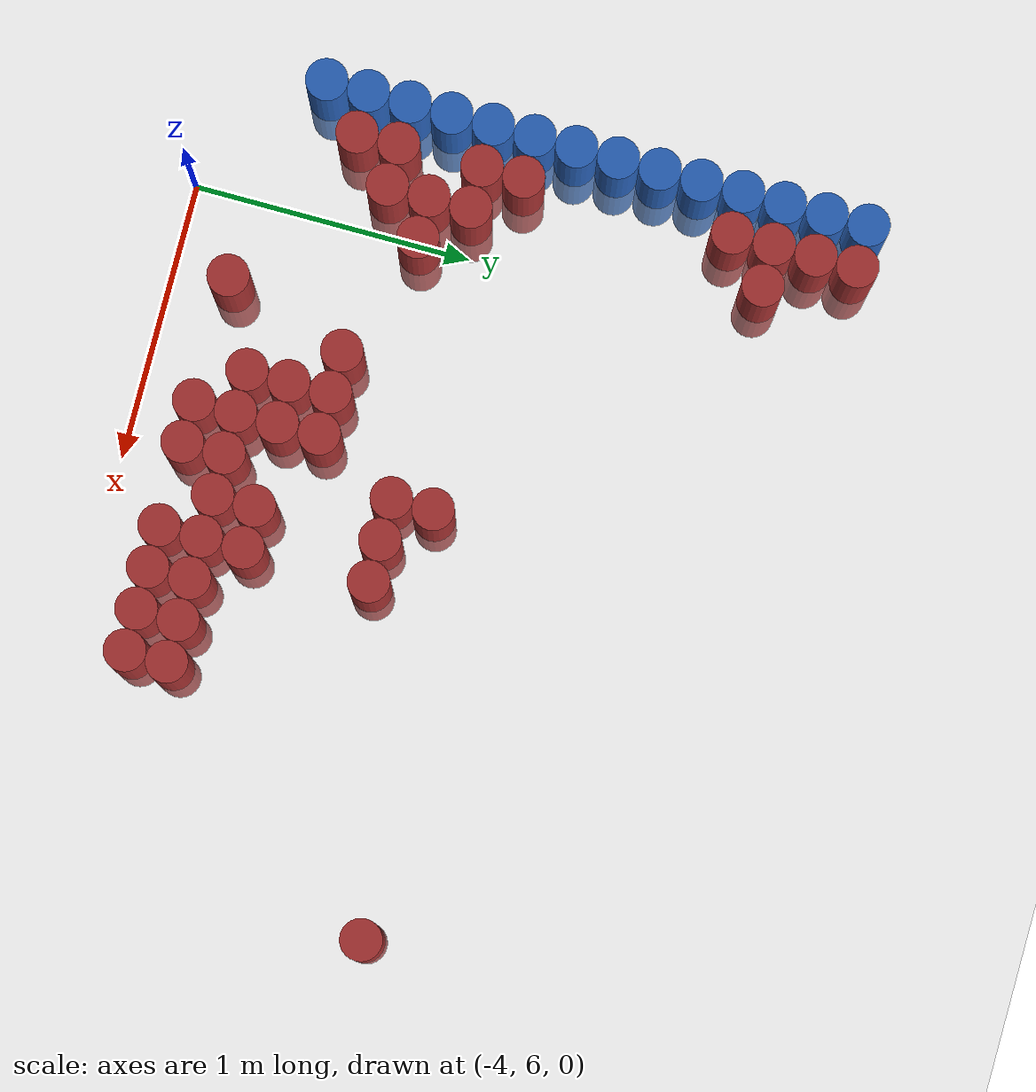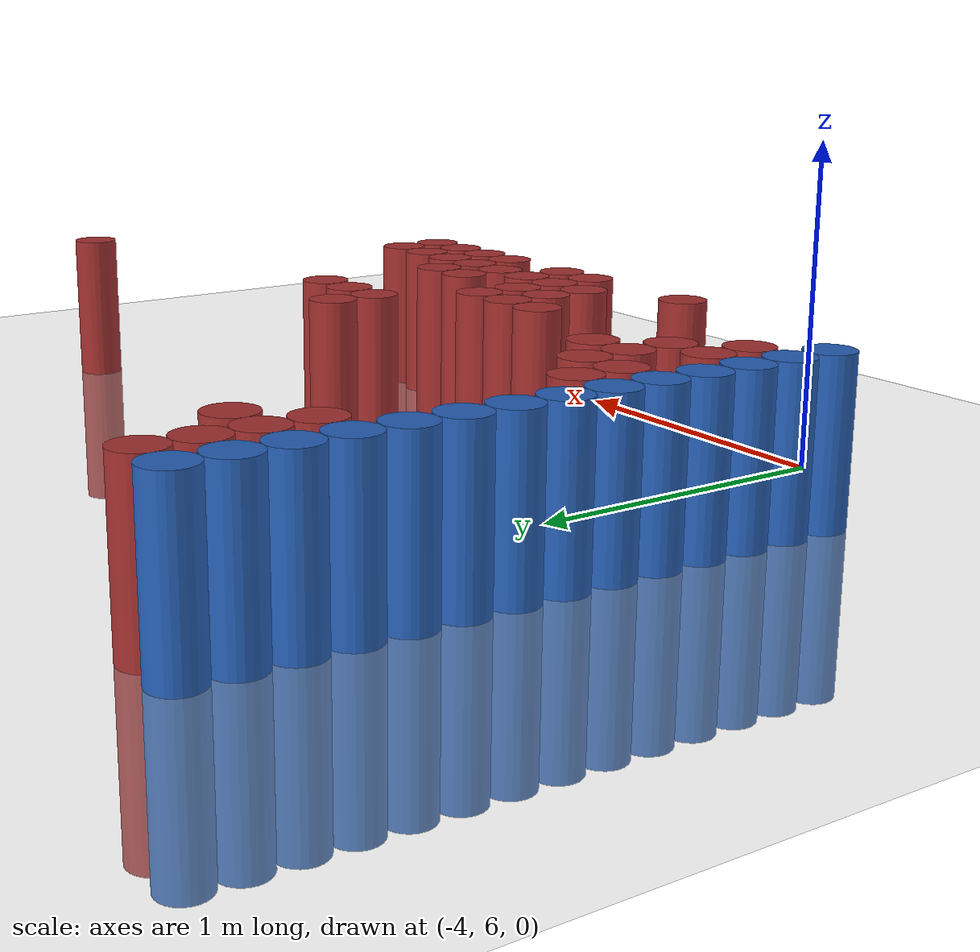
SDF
<sdf version="1.6">
 <world name="default">
  <model name="ground_plane">
   <static>1</static>
   <link name="link">
    <collision name="collision">
     <geometry><plane><normal>0 0 1</normal><size>100 100</size></plane></geometry>
     <surface><friction><ode><mu>100</mu><mu2>50</mu2></ode></friction></surface>
    </collision>
    <visual name="visual">
     <cast_shadows>0</cast_shadows>
     <geometry><plane><normal>0 0 1</normal><size>100 100</size></plane></geometry>
     <material>
      <script><uri>file://media/materials/scripts/gazebo.material</uri><name>Gazebo/Grey</name></script>
     </material>
    </visual>
   </link>
  </model>
  <model name="unit_cylinder_104">
   <static>1</static>
   <pose>-4.425000 6.375000 0.000000 0.000000 0.000000 0.000000</pose>
   <link name="link">
    <inertial>
     <mass>1</mass>
     <inertia><ixx>0.145833</ixx><ixy>0</ixy><ixz>0</ixz><iyy>0.145833</iyy><iyz>0</iyz><izz>0.125</izz></inertia>
    </inertial>
    <collision name="collision">
     <geometry><cylinder><radius>0.075000</radius><length>1</length></cylinder></geometry>
    </collision>
    <visual name="visual">
     <geometry><cylinder><radius>0.075000</radius><length>1</length></cylinder></geometry>
     <material>
      <ambient>0.152000 0.379000 0.720000 1</ambient>
      <diffuse>0.152000 0.379000 0.720000 1</diffuse>
     </material>
     <material>
      <script><name>Gazebo/Grey</name><uri>file://media/materials/scripts/gazebo.material</uri></script>
     </material>
    </visual>
   </link>
  </model>
  <model name="unit_cylinder_105">
   <static>1</static>
   <pose>-4.425000 6.525000 0.000000 0.000000 0.000000 0.000000</pose>
   <link name="link">
    <inertial>
     <mass>1</mass>
     <inertia><ixx>0.145833</ixx><ixy>0</ixy><ixz>0</ixz><iyy>0.145833</iyy><iyz>0</iyz><izz>0.125</izz></inertia>
    </inertial>
    <collision name="collision">
     <geometry><cylinder><radius>0.075000</radius><length>1</length></cylinder></geometry>
    </collision>
    <visual name="visual">
     <geometry><cylinder><radius>0.075000</radius><length>1</length></cylinder></geometry>
     <material>
      <ambient>0.152000 0.379000 0.720000 1</ambient>
      <diffuse>0.152000 0.379000 0.720000 1</diffuse>
     </material>
     <material>
      <script><name>Gazebo/Grey</name><uri>file://media/materials/scripts/gazebo.material</uri></script>
     </material>
    </visual>
   </link>
  </model>
  <model name="unit_cylinder_106">
   <static>1</static>
   <pose>-4.425000 6.675000 0.000000 0.000000 0.000000 0.000000</pose>
   <link name="link">
    <inertial>
     <mass>1</mass>
     <inertia><ixx>0.145833</ixx><ixy>0</ixy><ixz>0</ixz><iyy>0.145833</iyy><iyz>0</iyz><izz>0.125</izz></inertia>
    </inertial>
    <collision name="collision">
     <geometry><cylinder><radius>0.075000</radius><length>1</length></cylinder></geometry>
    </collision>
    <visual name="visual">
     <geometry><cylinder><radius>0.075000</radius><length>1</length></cylinder></geometry>
     <material>
      <ambient>0.152000 0.379000 0.720000 1</ambient>
      <diffuse>0.152000 0.379000 0.720000 1</diffuse>
     </material>
     <material>
      <script><name>Gazebo/Grey</name><uri>file://media/materials/scripts/gazebo.material</uri></script>
     </material>
    </visual>
   </link>
  </model>
  <model name="unit_cylinder_107">
   <static>1</static>
   <pose>-4.425000 6.825000 0.000000 0.000000 0.000000 0.000000</pose>
   <link name="link">
    <inertial>
     <mass>1</mass>
     <inertia><ixx>0.145833</ixx><ixy>0</ixy><ixz>0</ixz><iyy>0.145833</iyy><iyz>0</iyz><izz>0.125</izz></inertia>
    </inertial>
    <collision name="collision">
     <geometry><cylinder><radius>0.075000</radius><length>1</length></cylinder></geometry>
    </collision>
    <visual name="visual">
     <geometry><cylinder><radius>0.075000</radius><length>1</length></cylinder></geometry>
     <material>
      <ambient>0.152000 0.379000 0.720000 1</ambient>
      <diffuse>0.152000 0.379000 0.720000 1</diffuse>
     </material>
     <material>
      <script><name>Gazebo/Grey</name><uri>file://media/materials/scripts/gazebo.material</uri></script>
     </material>
    </visual>
   </link>
  </model>
  <model name="unit_cylinder_108">
   <static>1</static>
   <pose>-4.425000 6.975000 0.000000 0.000000 0.000000 0.000000</pose>
   <link name="link">
    <inertial>
     <mass>1</mass>
     <inertia><ixx>0.145833</ixx><ixy>0</ixy><ixz>0</ixz><iyy>0.145833</iyy><iyz>0</iyz><izz>0.125</izz></inertia>
    </inertial>
    <collision name="collision">
     <geometry><cylinder><radius>0.075000</radius><length>1</length></cylinder></geometry>
    </collision>
    <visual name="visual">
     <geometry><cylinder><radius>0.075000</radius><length>1</length></cylinder></geometry>
     <material>
      <ambient>0.152000 0.379000 0.720000 1</ambient>
      <diffuse>0.152000 0.379000 0.720000 1</diffuse>
     </material>
     <material>
      <script><name>Gazebo/Grey</name><uri>file://media/materials/scripts/gazebo.material</uri></script>
     </material>
    </visual>
   </link>
  </model>
  <model name="unit_cylinder_109">
   <static>1</static>
   <pose>-4.425000 7.125000 0.000000 0.000000 0.000000 0.000000</pose>
   <link name="link">
    <inertial>
     <mass>1</mass>
     <inertia><ixx>0.145833</ixx><ixy>0</ixy><ixz>0</ixz><iyy>0.145833</iyy><iyz>0</iyz><izz>0.125</izz></inertia>
    </inertial>
    <collision name="collision">
     <geometry><cylinder><radius>0.075000</radius><length>1</length></cylinder></geometry>
    </collision>
    <visual name="visual">
     <geometry><cylinder><radius>0.075000</radius><length>1</length></cylinder></geometry>
     <material>
      <ambient>0.152000 0.379000 0.720000 1</ambient>
      <diffuse>0.152000 0.379000 0.720000 1</diffuse>
     </material>
     <material>
      <script><name>Gazebo/Grey</name><uri>file://media/materials/scripts/gazebo.material</uri></script>
     </material>
    </visual>
   </link>
  </model>
  <model name="unit_cylinder_110">
   <static>1</static>
   <pose>-4.425000 7.275000 0.000000 0.000000 0.000000 0.000000</pose>
   <link name="link">
    <inertial>
     <mass>1</mass>
     <inertia><ixx>0.145833</ixx><ixy>0</ixy><ixz>0</ixz><iyy>0.145833</iyy><iyz>0</iyz><izz>0.125</izz></inertia>
    </inertial>
    <collision name="collision">
     <geometry><cylinder><radius>0.075000</radius><length>1</length></cylinder></geometry>
    </collision>
    <visual name="visual">
     <geometry><cylinder><radius>0.075000</radius><length>1</length></cylinder></geometry>
     <material>
      <ambient>0.152000 0.379000 0.720000 1</ambient>
      <diffuse>0.152000 0.379000 0.720000 1</diffuse>
     </material>
     <material>
      <script><name>Gazebo/Grey</name><uri>file://media/materials/scripts/gazebo.material</uri></script>
     </material>
    </visual>
   </link>
  </model>
  <model name="unit_cylinder_111">
   <static>1</static>
   <pose>-4.425000 7.425000 0.000000 0.000000 0.000000 0.000000</pose>
   <link name="link">
    <inertial>
     <mass>1</mass>
     <inertia><ixx>0.145833</ixx><ixy>0</ixy><ixz>0</ixz><iyy>0.145833</iyy><iyz>0</iyz><izz>0.125</izz></inertia>
    </inertial>
    <collision name="collision">
     <geometry><cylinder><radius>0.075000</radius><length>1</length></cylinder></geometry>
    </collision>
    <visual name="visual">
     <geometry><cylinder><radius>0.075000</radius><length>1</length></cylinder></geometry>
     <material>
      <ambient>0.152000 0.379000 0.720000 1</ambient>
      <diffuse>0.152000 0.379000 0.720000 1</diffuse>
     </material>
     <material>
      <script><name>Gazebo/Grey</name><uri>file://media/materials/scripts/gazebo.material</uri></script>
     </material>
    </visual>
   </link>
  </model>
  <model name="unit_cylinder_112">
   <static>1</static>
   <pose>-4.425000 7.575000 0.000000 0.000000 0.000000 0.000000</pose>
   <link name="link">
    <inertial>
     <mass>1</mass>
     <inertia><ixx>0.145833</ixx><ixy>0</ixy><ixz>0</ixz><iyy>0.145833</iyy><iyz>0</iyz><izz>0.125</izz></inertia>
    </inertial>
    <collision name="collision">
     <geometry><cylinder><radius>0.075000</radius><length>1</length></cylinder></geometry>
    </collision>
    <visual name="visual">
     <geometry><cylinder><radius>0.075000</radius><length>1</length></cylinder></geometry>
     <material>
      <ambient>0.152000 0.379000 0.720000 1</ambient>
      <diffuse>0.152000 0.379000 0.720000 1</diffuse>
     </material>
     <material>
      <script><name>Gazebo/Grey</name><uri>file://media/materials/scripts/gazebo.material</uri></script>
     </material>
    </visual>
   </link>
  </model>
  <model name="unit_cylinder_113">
   <static>1</static>
   <pose>-4.425000 7.725000 0.000000 0.000000 0.000000 0.000000</pose>
   <link name="link">
    <inertial>
     <mass>1</mass>
     <inertia><ixx>0.145833</ixx><ixy>0</ixy><ixz>0</ixz><iyy>0.145833</iyy><iyz>0</iyz><izz>0.125</izz></inertia>
    </inertial>
    <collision name="collision">
     <geometry><cylinder><radius>0.075000</radius><length>1</length></cylinder></geometry>
    </collision>
    <visual name="visual">
     <geometry><cylinder><radius>0.075000</radius><length>1</length></cylinder></geometry>
     <material>
      <ambient>0.152000 0.379000 0.720000 1</ambient>
      <diffuse>0.152000 0.379000 0.720000 1</diffuse>
     </material>
     <material>
      <script><name>Gazebo/Grey</name><uri>file://media/materials/scripts/gazebo.material</uri></script>
     </material>
    </visual>
   </link>
  </model>
  <model name="unit_cylinder_114">
   <static>1</static>
   <pose>-4.425000 7.875000 0.000000 0.000000 0.000000 0.000000</pose>
   <link name="link">
    <inertial>
     <mass>1</mass>
     <inertia><ixx>0.145833</ixx><ixy>0</ixy><ixz>0</ixz><iyy>0.145833</iyy><iyz>0</iyz><izz>0.125</izz></inertia>
    </inertial>
    <collision name="collision">
     <geometry><cylinder><radius>0.075000</radius><length>1</length></cylinder></geometry>
    </collision>
    <visual name="visual">
     <geometry><cylinder><radius>0.075000</radius><length>1</length></cylinder></geometry>
     <material>
      <ambient>0.152000 0.379000 0.720000 1</ambient>
      <diffuse>0.152000 0.379000 0.720000 1</diffuse>
     </material>
     <material>
      <script><name>Gazebo/Grey</name><uri>file://media/materials/scripts/gazebo.material</uri></script>
     </material>
    </visual>
   </link>
  </model>
  <model name="unit_cylinder_115">
   <static>1</static>
   <pose>-4.425000 8.025000 0.000000 0.000000 0.000000 0.000000</pose>
   <link name="link">
    <inertial>
     <mass>1</mass>
     <inertia><ixx>0.145833</ixx><ixy>0</ixy><ixz>0</ixz><iyy>0.145833</iyy><iyz>0</iyz><izz>0.125</izz></inertia>
    </inertial>
    <collision name="collision">
     <geometry><cylinder><radius>0.075000</radius><length>1</length></cylinder></geometry>
    </collision>
    <visual name="visual">
     <geometry><cylinder><radius>0.075000</radius><length>1</length></cylinder></geometry>
     <material>
      <ambient>0.152000 0.379000 0.720000 1</ambient>
      <diffuse>0.152000 0.379000 0.720000 1</diffuse>
     </material>
     <material>
      <script><name>Gazebo/Grey</name><uri>file://media/materials/scripts/gazebo.material</uri></script>
     </material>
    </visual>
   </link>
  </model>
  <model name="unit_cylinder_116">
   <static>1</static>
   <pose>-4.425000 8.175000 0.000000 0.000000 0.000000 0.000000</pose>
   <link name="link">
    <inertial>
     <mass>1</mass>
     <inertia><ixx>0.145833</ixx><ixy>0</ixy><ixz>0</ixz><iyy>0.145833</iyy><iyz>0</iyz><izz>0.125</izz></inertia>
    </inertial>
    <collision name="collision">
     <geometry><cylinder><radius>0.075000</radius><length>1</length></cylinder></geometry>
    </collision>
    <visual name="visual">
     <geometry><cylinder><radius>0.075000</radius><length>1</length></cylinder></geometry>
     <material>
      <ambient>0.152000 0.379000 0.720000 1</ambient>
      <diffuse>0.152000 0.379000 0.720000 1</diffuse>
     </material>
     <material>
      <script><name>Gazebo/Grey</name><uri>file://media/materials/scripts/gazebo.material</uri></script>
     </material>
    </visual>
   </link>
  </model>
  <model name="unit_cylinder_117">
   <static>1</static>
   <pose>-4.425000 8.325000 0.000000 0.000000 0.000000 0.000000</pose>
   <link name="link">
    <inertial>
     <mass>1</mass>
     <inertia><ixx>0.145833</ixx><ixy>0</ixy><ixz>0</ixz><iyy>0.145833</iyy><iyz>0</iyz><izz>0.125</izz></inertia>
    </inertial>
    <collision name="collision">
     <geometry><cylinder><radius>0.075000</radius><length>1</length></cylinder></geometry>
    </collision>
    <visual name="visual">
     <geometry><cylinder><radius>0.075000</radius><length>1</length></cylinder></geometry>
     <material>
      <ambient>0.152000 0.379000 0.720000 1</ambient>
      <diffuse>0.152000 0.379000 0.720000 1</diffuse>
     </material>
     <material>
      <script><name>Gazebo/Grey</name><uri>file://media/materials/scripts/gazebo.material</uri></script>
     </material>
    </visual>
   </link>
  </model>
  <model name="unit_cylinder_132">
   <static>1</static>
   <pose>-4.275000 6.525000 0.000000 0.000000 0.000000 0.000000</pose>
   <link name="link">
    <inertial>
     <mass>1</mass>
     <inertia><ixx>0.145833</ixx><ixy>0</ixy><ixz>0</ixz><iyy>0.145833</iyy><iyz>0</iyz><izz>0.125</izz></inertia>
    </inertial>
    <collision name="collision">
     <geometry><cylinder><radius>0.075000</radius><length>1</length></cylinder></geometry>
    </collision>
    <visual name="visual">
     <geometry><cylinder><radius>0.075000</radius><length>1</length></cylinder></geometry>
     <material>
      <ambient>0.648000 0.192000 0.192000 1</ambient>
      <diffuse>0.648000 0.192000 0.192000 1</diffuse>
     </material>
     <material>
      <script><name>Gazebo/Grey</name><uri>file://media/materials/scripts/gazebo.material</uri></script>
     </material>
    </visual>
   </link>
  </model>
  <model name="unit_cylinder_133">
   <static>1</static>
   <pose>-4.275000 6.675000 0.000000 0.000000 0.000000 0.000000</pose>
   <link name="link">
    <inertial>
     <mass>1</mass>
     <inertia><ixx>0.145833</ixx><ixy>0</ixy><ixz>0</ixz><iyy>0.145833</iyy><iyz>0</iyz><izz>0.125</izz></inertia>
    </inertial>
    <collision name="collision">
     <geometry><cylinder><radius>0.075000</radius><length>1</length></cylinder></geometry>
    </collision>
    <visual name="visual">
     <geometry><cylinder><radius>0.075000</radius><length>1</length></cylinder></geometry>
     <material>
      <ambient>0.648000 0.192000 0.192000 1</ambient>
      <diffuse>0.648000 0.192000 0.192000 1</diffuse>
     </material>
     <material>
      <script><name>Gazebo/Grey</name><uri>file://media/materials/scripts/gazebo.material</uri></script>
     </material>
    </visual>
   </link>
  </model>
  <model name="unit_cylinder_134">
   <static>1</static>
   <pose>-4.275000 6.975000 0.000000 0.000000 0.000000 0.000000</pose>
   <link name="link">
    <inertial>
     <mass>1</mass>
     <inertia><ixx>0.145833</ixx><ixy>0</ixy><ixz>0</ixz><iyy>0.145833</iyy><iyz>0</iyz><izz>0.125</izz></inertia>
    </inertial>
    <collision name="collision">
     <geometry><cylinder><radius>0.075000</radius><length>1</length></cylinder></geometry>
    </collision>
    <visual name="visual">
     <geometry><cylinder><radius>0.075000</radius><length>1</length></cylinder></geometry>
     <material>
      <ambient>0.648000 0.192000 0.192000 1</ambient>
      <diffuse>0.648000 0.192000 0.192000 1</diffuse>
     </material>
     <material>
      <script><name>Gazebo/Grey</name><uri>file://media/materials/scripts/gazebo.material</uri></script>
     </material>
    </visual>
   </link>
  </model>
  <model name="unit_cylinder_135">
   <static>1</static>
   <pose>-4.275000 7.125000 0.000000 0.000000 0.000000 0.000000</pose>
   <link name="link">
    <inertial>
     <mass>1</mass>
     <inertia><ixx>0.145833</ixx><ixy>0</ixy><ixz>0</ixz><iyy>0.145833</iyy><iyz>0</iyz><izz>0.125</izz></inertia>
    </inertial>
    <collision name="collision">
     <geometry><cylinder><radius>0.075000</radius><length>1</length></cylinder></geometry>
    </collision>
    <visual name="visual">
     <geometry><cylinder><radius>0.075000</radius><length>1</length></cylinder></geometry>
     <material>
      <ambient>0.648000 0.192000 0.192000 1</ambient>
      <diffuse>0.648000 0.192000 0.192000 1</diffuse>
     </material>
     <material>
      <script><name>Gazebo/Grey</name><uri>file://media/materials/scripts/gazebo.material</uri></script>
     </material>
    </visual>
   </link>
  </model>
  <model name="unit_cylinder_136">
   <static>1</static>
   <pose>-4.275000 7.875000 0.000000 0.000000 0.000000 0.000000</pose>
   <link name="link">
    <inertial>
     <mass>1</mass>
     <inertia><ixx>0.145833</ixx><ixy>0</ixy><ixz>0</ixz><iyy>0.145833</iyy><iyz>0</iyz><izz>0.125</izz></inertia>
    </inertial>
    <collision name="collision">
     <geometry><cylinder><radius>0.075000</radius><length>1</length></cylinder></geometry>
    </collision>
    <visual name="visual">
     <geometry><cylinder><radius>0.075000</radius><length>1</length></cylinder></geometry>
     <material>
      <ambient>0.648000 0.192000 0.192000 1</ambient>
      <diffuse>0.648000 0.192000 0.192000 1</diffuse>
     </material>
     <material>
      <script><name>Gazebo/Grey</name><uri>file://media/materials/scripts/gazebo.material</uri></script>
     </material>
    </visual>
   </link>
  </model>
  <model name="unit_cylinder_137">
   <static>1</static>
   <pose>-4.275000 8.025000 0.000000 0.000000 0.000000 0.000000</pose>
   <link name="link">
    <inertial>
     <mass>1</mass>
     <inertia><ixx>0.145833</ixx><ixy>0</ixy><ixz>0</ixz><iyy>0.145833</iyy><iyz>0</iyz><izz>0.125</izz></inertia>
    </inertial>
    <collision name="collision">
     <geometry><cylinder><radius>0.075000</radius><length>1</length></cylinder></geometry>
    </collision>
    <visual name="visual">
     <geometry><cylinder><radius>0.075000</radius><length>1</length></cylinder></geometry>
     <material>
      <ambient>0.648000 0.192000 0.192000 1</ambient>
      <diffuse>0.648000 0.192000 0.192000 1</diffuse>
     </material>
     <material>
      <script><name>Gazebo/Grey</name><uri>file://media/materials/scripts/gazebo.material</uri></script>
     </material>
    </visual>
   </link>
  </model>
  <model name="unit_cylinder_138">
   <static>1</static>
   <pose>-4.275000 8.175000 0.000000 0.000000 0.000000 0.000000</pose>
   <link name="link">
    <inertial>
     <mass>1</mass>
     <inertia><ixx>0.145833</ixx><ixy>0</ixy><ixz>0</ixz><iyy>0.145833</iyy><iyz>0</iyz><izz>0.125</izz></inertia>
    </inertial>
    <collision name="collision">
     <geometry><cylinder><radius>0.075000</radius><length>1</length></cylinder></geometry>
    </collision>
    <visual name="visual">
     <geometry><cylinder><radius>0.075000</radius><length>1</length></cylinder></geometry>
     <material>
      <ambient>0.648000 0.192000 0.192000 1</ambient>
      <diffuse>0.648000 0.192000 0.192000 1</diffuse>
     </material>
     <material>
      <script><name>Gazebo/Grey</name><uri>file://media/materials/scripts/gazebo.material</uri></script>
     </material>
    </visual>
   </link>
  </model>
  <model name="unit_cylinder_139">
   <static>1</static>
   <pose>-4.275000 8.325000 0.000000 0.000000 0.000000 0.000000</pose>
   <link name="link">
    <inertial>
     <mass>1</mass>
     <inertia><ixx>0.145833</ixx><ixy>0</ixy><ixz>0</ixz><iyy>0.145833</iyy><iyz>0</iyz><izz>0.125</izz></inertia>
    </inertial>
    <collision name="collision">
     <geometry><cylinder><radius>0.075000</radius><length>1</length></cylinder></geometry>
    </collision>
    <visual name="visual">
     <geometry><cylinder><radius>0.075000</radius><length>1</length></cylinder></geometry>
     <material>
      <ambient>0.648000 0.192000 0.192000 1</ambient>
      <diffuse>0.648000 0.192000 0.192000 1</diffuse>
     </material>
     <material>
      <script><name>Gazebo/Grey</name><uri>file://media/materials/scripts/gazebo.material</uri></script>
     </material>
    </visual>
   </link>
  </model>
  <model name="unit_cylinder_145">
   <static>1</static>
   <pose>-4.125000 6.675000 0.000000 0.000000 0.000000 0.000000</pose>
   <link name="link">
    <inertial>
     <mass>1</mass>
     <inertia><ixx>0.145833</ixx><ixy>0</ixy><ixz>0</ixz><iyy>0.145833</iyy><iyz>0</iyz><izz>0.125</izz></inertia>
    </inertial>
    <collision name="collision">
     <geometry><cylinder><radius>0.075000</radius><length>1</length></cylinder></geometry>
    </collision>
    <visual name="visual">
     <geometry><cylinder><radius>0.075000</radius><length>1</length></cylinder></geometry>
     <material>
      <ambient>0.648000 0.192000 0.192000 1</ambient>
      <diffuse>0.648000 0.192000 0.192000 1</diffuse>
     </material>
     <material>
      <script><name>Gazebo/Grey</name><uri>file://media/materials/scripts/gazebo.material</uri></script>
     </material>
    </visual>
   </link>
  </model>
  <model name="unit_cylinder_146">
   <static>1</static>
   <pose>-4.125000 6.825000 0.000000 0.000000 0.000000 0.000000</pose>
   <link name="link">
    <inertial>
     <mass>1</mass>
     <inertia><ixx>0.145833</ixx><ixy>0</ixy><ixz>0</ixz><iyy>0.145833</iyy><iyz>0</iyz><izz>0.125</izz></inertia>
    </inertial>
    <collision name="collision">
     <geometry><cylinder><radius>0.075000</radius><length>1</length></cylinder></geometry>
    </collision>
    <visual name="visual">
     <geometry><cylinder><radius>0.075000</radius><length>1</length></cylinder></geometry>
     <material>
      <ambient>0.648000 0.192000 0.192000 1</ambient>
      <diffuse>0.648000 0.192000 0.192000 1</diffuse>
     </material>
     <material>
      <script><name>Gazebo/Grey</name><uri>file://media/materials/scripts/gazebo.material</uri></script>
     </material>
    </visual>
   </link>
  </model>
  <model name="unit_cylinder_147">
   <static>1</static>
   <pose>-4.125000 6.975000 0.000000 0.000000 0.000000 0.000000</pose>
   <link name="link">
    <inertial>
     <mass>1</mass>
     <inertia><ixx>0.145833</ixx><ixy>0</ixy><ixz>0</ixz><iyy>0.145833</iyy><iyz>0</iyz><izz>0.125</izz></inertia>
    </inertial>
    <collision name="collision">
     <geometry><cylinder><radius>0.075000</radius><length>1</length></cylinder></geometry>
    </collision>
    <visual name="visual">
     <geometry><cylinder><radius>0.075000</radius><length>1</length></cylinder></geometry>
     <material>
      <ambient>0.648000 0.192000 0.192000 1</ambient>
      <diffuse>0.648000 0.192000 0.192000 1</diffuse>
     </material>
     <material>
      <script><name>Gazebo/Grey</name><uri>file://media/materials/scripts/gazebo.material</uri></script>
     </material>
    </visual>
   </link>
  </model>
  <model name="unit_cylinder_148">
   <static>1</static>
   <pose>-4.125000 8.025000 0.000000 0.000000 0.000000 0.000000</pose>
   <link name="link">
    <inertial>
     <mass>1</mass>
     <inertia><ixx>0.145833</ixx><ixy>0</ixy><ixz>0</ixz><iyy>0.145833</iyy><iyz>0</iyz><izz>0.125</izz></inertia>
    </inertial>
    <collision name="collision">
     <geometry><cylinder><radius>0.075000</radius><length>1</length></cylinder></geometry>
    </collision>
    <visual name="visual">
     <geometry><cylinder><radius>0.075000</radius><length>1</length></cylinder></geometry>
     <material>
      <ambient>0.648000 0.192000 0.192000 1</ambient>
      <diffuse>0.648000 0.192000 0.192000 1</diffuse>
     </material>
     <material>
      <script><name>Gazebo/Grey</name><uri>file://media/materials/scripts/gazebo.material</uri></script>
     </material>
    </visual>
   </link>
  </model>
  <model name="unit_cylinder_153">
   <static>1</static>
   <pose>-3.975000 6.825000 0.000000 0.000000 0.000000 0.000000</pose>
   <link name="link">
    <inertial>
     <mass>1</mass>
     <inertia><ixx>0.145833</ixx><ixy>0</ixy><ixz>0</ixz><iyy>0.145833</iyy><iyz>0</iyz><izz>0.125</izz></inertia>
    </inertial>
    <collision name="collision">
     <geometry><cylinder><radius>0.075000</radius><length>1</length></cylinder></geometry>
    </collision>
    <visual name="visual">
     <geometry><cylinder><radius>0.075000</radius><length>1</length></cylinder></geometry>
     <material>
      <ambient>0.648000 0.192000 0.192000 1</ambient>
      <diffuse>0.648000 0.192000 0.192000 1</diffuse>
     </material>
     <material>
      <script><name>Gazebo/Grey</name><uri>file://media/materials/scripts/gazebo.material</uri></script>
     </material>
    </visual>
   </link>
  </model>
  <model name="unit_cylinder_166">
   <static>1</static>
   <pose>-3.675000 6.225000 0.000000 0.000000 0.000000 0.000000</pose>
   <link name="link">
    <inertial>
     <mass>1</mass>
     <inertia><ixx>0.145833</ixx><ixy>0</ixy><ixz>0</ixz><iyy>0.145833</iyy><iyz>0</iyz><izz>0.125</izz></inertia>
    </inertial>
    <collision name="collision">
     <geometry><cylinder><radius>0.075000</radius><length>1</length></cylinder></geometry>
    </collision>
    <visual name="visual">
     <geometry><cylinder><radius>0.075000</radius><length>1</length></cylinder></geometry>
     <material>
      <ambient>0.648000 0.192000 0.192000 1</ambient>
      <diffuse>0.648000 0.192000 0.192000 1</diffuse>
     </material>
     <material>
      <script><name>Gazebo/Grey</name><uri>file://media/materials/scripts/gazebo.material</uri></script>
     </material>
    </visual>
   </link>
  </model>
  <model name="unit_cylinder_172">
   <static>1</static>
   <pose>-3.525000 6.675000 0.000000 0.000000 0.000000 0.000000</pose>
   <link name="link">
    <inertial>
     <mass>1</mass>
     <inertia><ixx>0.145833</ixx><ixy>0</ixy><ixz>0</ixz><iyy>0.145833</iyy><iyz>0</iyz><izz>0.125</izz></inertia>
    </inertial>
    <collision name="collision">
     <geometry><cylinder><radius>0.075000</radius><length>1</length></cylinder></geometry>
    </collision>
    <visual name="visual">
     <geometry><cylinder><radius>0.075000</radius><length>1</length></cylinder></geometry>
     <material>
      <ambient>0.648000 0.192000 0.192000 1</ambient>
      <diffuse>0.648000 0.192000 0.192000 1</diffuse>
     </material>
     <material>
      <script><name>Gazebo/Grey</name><uri>file://media/materials/scripts/gazebo.material</uri></script>
     </material>
    </visual>
   </link>
  </model>
  <model name="unit_cylinder_180">
   <static>1</static>
   <pose>-3.375000 6.375000 0.000000 0.000000 0.000000 0.000000</pose>
   <link name="link">
    <inertial>
     <mass>1</mass>
     <inertia><ixx>0.145833</ixx><ixy>0</ixy><ixz>0</ixz><iyy>0.145833</iyy><iyz>0</iyz><izz>0.125</izz></inertia>
    </inertial>
    <collision name="collision">
     <geometry><cylinder><radius>0.075000</radius><length>1</length></cylinder></geometry>
    </collision>
    <visual name="visual">
     <geometry><cylinder><radius>0.075000</radius><length>1</length></cylinder></geometry>
     <material>
      <ambient>0.648000 0.192000 0.192000 1</ambient>
      <diffuse>0.648000 0.192000 0.192000 1</diffuse>
     </material>
     <material>
      <script><name>Gazebo/Grey</name><uri>file://media/materials/scripts/gazebo.material</uri></script>
     </material>
    </visual>
   </link>
  </model>
  <model name="unit_cylinder_181">
   <static>1</static>
   <pose>-3.375000 6.525000 0.000000 0.000000 0.000000 0.000000</pose>
   <link name="link">
    <inertial>
     <mass>1</mass>
     <inertia><ixx>0.145833</ixx><ixy>0</ixy><ixz>0</ixz><iyy>0.145833</iyy><iyz>0</iyz><izz>0.125</izz></inertia>
    </inertial>
    <collision name="collision">
     <geometry><cylinder><radius>0.075000</radius><length>1</length></cylinder></geometry>
    </collision>
    <visual name="visual">
     <geometry><cylinder><radius>0.075000</radius><length>1</length></cylinder></geometry>
     <material>
      <ambient>0.648000 0.192000 0.192000 1</ambient>
      <diffuse>0.648000 0.192000 0.192000 1</diffuse>
     </material>
     <material>
      <script><name>Gazebo/Grey</name><uri>file://media/materials/scripts/gazebo.material</uri></script>
     </material>
    </visual>
   </link>
  </model>
  <model name="unit_cylinder_182">
   <static>1</static>
   <pose>-3.375000 6.675000 0.000000 0.000000 0.000000 0.000000</pose>
   <link name="link">
    <inertial>
     <mass>1</mass>
     <inertia><ixx>0.145833</ixx><ixy>0</ixy><ixz>0</ixz><iyy>0.145833</iyy><iyz>0</iyz><izz>0.125</izz></inertia>
    </inertial>
    <collision name="collision">
     <geometry><cylinder><radius>0.075000</radius><length>1</length></cylinder></geometry>
    </collision>
    <visual name="visual">
     <geometry><cylinder><radius>0.075000</radius><length>1</length></cylinder></geometry>
     <material>
      <ambient>0.648000 0.192000 0.192000 1</ambient>
      <diffuse>0.648000 0.192000 0.192000 1</diffuse>
     </material>
     <material>
      <script><name>Gazebo/Grey</name><uri>file://media/materials/scripts/gazebo.material</uri></script>
     </material>
    </visual>
   </link>
  </model>
  <model name="unit_cylinder_192">
   <static>1</static>
   <pose>-3.225000 6.225000 0.000000 0.000000 0.000000 0.000000</pose>
   <link name="link">
    <inertial>
     <mass>1</mass>
     <inertia><ixx>0.145833</ixx><ixy>0</ixy><ixz>0</ixz><iyy>0.145833</iyy><iyz>0</iyz><izz>0.125</izz></inertia>
    </inertial>
    <collision name="collision">
     <geometry><cylinder><radius>0.075000</radius><length>1</length></cylinder></geometry>
    </collision>
    <visual name="visual">
     <geometry><cylinder><radius>0.075000</radius><length>1</length></cylinder></geometry>
     <material>
      <ambient>0.648000 0.192000 0.192000 1</ambient>
      <diffuse>0.648000 0.192000 0.192000 1</diffuse>
     </material>
     <material>
      <script><name>Gazebo/Grey</name><uri>file://media/materials/scripts/gazebo.material</uri></script>
     </material>
    </visual>
   </link>
  </model>
  <model name="unit_cylinder_193">
   <static>1</static>
   <pose>-3.225000 6.375000 0.000000 0.000000 0.000000 0.000000</pose>
   <link name="link">
    <inertial>
     <mass>1</mass>
     <inertia><ixx>0.145833</ixx><ixy>0</ixy><ixz>0</ixz><iyy>0.145833</iyy><iyz>0</iyz><izz>0.125</izz></inertia>
    </inertial>
    <collision name="collision">
     <geometry><cylinder><radius>0.075000</radius><length>1</length></cylinder></geometry>
    </collision>
    <visual name="visual">
     <geometry><cylinder><radius>0.075000</radius><length>1</length></cylinder></geometry>
     <material>
      <ambient>0.648000 0.192000 0.192000 1</ambient>
      <diffuse>0.648000 0.192000 0.192000 1</diffuse>
     </material>
     <material>
      <script><name>Gazebo/Grey</name><uri>file://media/materials/scripts/gazebo.material</uri></script>
     </material>
    </visual>
   </link>
  </model>
  <model name="unit_cylinder_194">
   <static>1</static>
   <pose>-3.225000 6.525000 0.000000 0.000000 0.000000 0.000000</pose>
   <link name="link">
    <inertial>
     <mass>1</mass>
     <inertia><ixx>0.145833</ixx><ixy>0</ixy><ixz>0</ixz><iyy>0.145833</iyy><iyz>0</iyz><izz>0.125</izz></inertia>
    </inertial>
    <collision name="collision">
     <geometry><cylinder><radius>0.075000</radius><length>1</length></cylinder></geometry>
    </collision>
    <visual name="visual">
     <geometry><cylinder><radius>0.075000</radius><length>1</length></cylinder></geometry>
     <material>
      <ambient>0.648000 0.192000 0.192000 1</ambient>
      <diffuse>0.648000 0.192000 0.192000 1</diffuse>
     </material>
     <material>
      <script><name>Gazebo/Grey</name><uri>file://media/materials/scripts/gazebo.material</uri></script>
     </material>
    </visual>
   </link>
  </model>
  <model name="unit_cylinder_195">
   <static>1</static>
   <pose>-3.225000 6.675000 0.000000 0.000000 0.000000 0.000000</pose>
   <link name="link">
    <inertial>
     <mass>1</mass>
     <inertia><ixx>0.145833</ixx><ixy>0</ixy><ixz>0</ixz><iyy>0.145833</iyy><iyz>0</iyz><izz>0.125</izz></inertia>
    </inertial>
    <collision name="collision">
     <geometry><cylinder><radius>0.075000</radius><length>1</length></cylinder></geometry>
    </collision>
    <visual name="visual">
     <geometry><cylinder><radius>0.075000</radius><length>1</length></cylinder></geometry>
     <material>
      <ambient>0.648000 0.192000 0.192000 1</ambient>
      <diffuse>0.648000 0.192000 0.192000 1</diffuse>
     </material>
     <material>
      <script><name>Gazebo/Grey</name><uri>file://media/materials/scripts/gazebo.material</uri></script>
     </material>
    </visual>
   </link>
  </model>
  <model name="unit_cylinder_202">
   <static>1</static>
   <pose>-3.075000 6.225000 0.000000 0.000000 0.000000 0.000000</pose>
   <link name="link">
    <inertial>
     <mass>1</mass>
     <inertia><ixx>0.145833</ixx><ixy>0</ixy><ixz>0</ixz><iyy>0.145833</iyy><iyz>0</iyz><izz>0.125</izz></inertia>
    </inertial>
    <collision name="collision">
     <geometry><cylinder><radius>0.075000</radius><length>1</length></cylinder></geometry>
    </collision>
    <visual name="visual">
     <geometry><cylinder><radius>0.075000</radius><length>1</length></cylinder></geometry>
     <material>
      <ambient>0.648000 0.192000 0.192000 1</ambient>
      <diffuse>0.648000 0.192000 0.192000 1</diffuse>
     </material>
     <material>
      <script><name>Gazebo/Grey</name><uri>file://media/materials/scripts/gazebo.material</uri></script>
     </material>
    </visual>
   </link>
  </model>
  <model name="unit_cylinder_203">
   <static>1</static>
   <pose>-3.075000 6.375000 0.000000 0.000000 0.000000 0.000000</pose>
   <link name="link">
    <inertial>
     <mass>1</mass>
     <inertia><ixx>0.145833</ixx><ixy>0</ixy><ixz>0</ixz><iyy>0.145833</iyy><iyz>0</iyz><izz>0.125</izz></inertia>
    </inertial>
    <collision name="collision">
     <geometry><cylinder><radius>0.075000</radius><length>1</length></cylinder></geometry>
    </collision>
    <visual name="visual">
     <geometry><cylinder><radius>0.075000</radius><length>1</length></cylinder></geometry>
     <material>
      <ambient>0.648000 0.192000 0.192000 1</ambient>
      <diffuse>0.648000 0.192000 0.192000 1</diffuse>
     </material>
     <material>
      <script><name>Gazebo/Grey</name><uri>file://media/materials/scripts/gazebo.material</uri></script>
     </material>
    </visual>
   </link>
  </model>
  <model name="unit_cylinder_204">
   <static>1</static>
   <pose>-3.075000 6.975000 0.000000 0.000000 0.000000 0.000000</pose>
   <link name="link">
    <inertial>
     <mass>1</mass>
     <inertia><ixx>0.145833</ixx><ixy>0</ixy><ixz>0</ixz><iyy>0.145833</iyy><iyz>0</iyz><izz>0.125</izz></inertia>
    </inertial>
    <collision name="collision">
     <geometry><cylinder><radius>0.075000</radius><length>1</length></cylinder></geometry>
    </collision>
    <visual name="visual">
     <geometry><cylinder><radius>0.075000</radius><length>1</length></cylinder></geometry>
     <material>
      <ambient>0.648000 0.192000 0.192000 1</ambient>
      <diffuse>0.648000 0.192000 0.192000 1</diffuse>
     </material>
     <material>
      <script><name>Gazebo/Grey</name><uri>file://media/materials/scripts/gazebo.material</uri></script>
     </material>
    </visual>
   </link>
  </model>
  <model name="unit_cylinder_205">
   <static>1</static>
   <pose>-3.075000 7.125000 0.000000 0.000000 0.000000 0.000000</pose>
   <link name="link">
    <inertial>
     <mass>1</mass>
     <inertia><ixx>0.145833</ixx><ixy>0</ixy><ixz>0</ixz><iyy>0.145833</iyy><iyz>0</iyz><izz>0.125</izz></inertia>
    </inertial>
    <collision name="collision">
     <geometry><cylinder><radius>0.075000</radius><length>1</length></cylinder></geometry>
    </collision>
    <visual name="visual">
     <geometry><cylinder><radius>0.075000</radius><length>1</length></cylinder></geometry>
     <material>
      <ambient>0.648000 0.192000 0.192000 1</ambient>
      <diffuse>0.648000 0.192000 0.192000 1</diffuse>
     </material>
     <material>
      <script><name>Gazebo/Grey</name><uri>file://media/materials/scripts/gazebo.material</uri></script>
     </material>
    </visual>
   </link>
  </model>
  <model name="unit_cylinder_207">
   <static>1</static>
   <pose>-2.925000 6.375000 0.000000 0.000000 0.000000 0.000000</pose>
   <link name="link">
    <inertial>
     <mass>1</mass>
     <inertia><ixx>0.145833</ixx><ixy>0</ixy><ixz>0</ixz><iyy>0.145833</iyy><iyz>0</iyz><izz>0.125</izz></inertia>
    </inertial>
    <collision name="collision">
     <geometry><cylinder><radius>0.075000</radius><length>1</length></cylinder></geometry>
    </collision>
    <visual name="visual">
     <geometry><cylinder><radius>0.075000</radius><length>1</length></cylinder></geometry>
     <material>
      <ambient>0.648000 0.192000 0.192000 1</ambient>
      <diffuse>0.648000 0.192000 0.192000 1</diffuse>
     </material>
     <material>
      <script><name>Gazebo/Grey</name><uri>file://media/materials/scripts/gazebo.material</uri></script>
     </material>
    </visual>
   </link>
  </model>
  <model name="unit_cylinder_208">
   <static>1</static>
   <pose>-2.925000 6.525000 0.000000 0.000000 0.000000 0.000000</pose>
   <link name="link">
    <inertial>
     <mass>1</mass>
     <inertia><ixx>0.145833</ixx><ixy>0</ixy><ixz>0</ixz><iyy>0.145833</iyy><iyz>0</iyz><izz>0.125</izz></inertia>
    </inertial>
    <collision name="collision">
     <geometry><cylinder><radius>0.075000</radius><length>1</length></cylinder></geometry>
    </collision>
    <visual name="visual">
     <geometry><cylinder><radius>0.075000</radius><length>1</length></cylinder></geometry>
     <material>
      <ambient>0.648000 0.192000 0.192000 1</ambient>
      <diffuse>0.648000 0.192000 0.192000 1</diffuse>
     </material>
     <material>
      <script><name>Gazebo/Grey</name><uri>file://media/materials/scripts/gazebo.material</uri></script>
     </material>
    </visual>
   </link>
  </model>
  <model name="unit_cylinder_209">
   <static>1</static>
   <pose>-2.925000 6.975000 0.000000 0.000000 0.000000 0.000000</pose>
   <link name="link">
    <inertial>
     <mass>1</mass>
     <inertia><ixx>0.145833</ixx><ixy>0</ixy><ixz>0</ixz><iyy>0.145833</iyy><iyz>0</iyz><izz>0.125</izz></inertia>
    </inertial>
    <collision name="collision">
     <geometry><cylinder><radius>0.075000</radius><length>1</length></cylinder></geometry>
    </collision>
    <visual name="visual">
     <geometry><cylinder><radius>0.075000</radius><length>1</length></cylinder></geometry>
     <material>
      <ambient>0.648000 0.192000 0.192000 1</ambient>
      <diffuse>0.648000 0.192000 0.192000 1</diffuse>
     </material>
     <material>
      <script><name>Gazebo/Grey</name><uri>file://media/materials/scripts/gazebo.material</uri></script>
     </material>
    </visual>
   </link>
  </model>
  <model name="unit_cylinder_215">
   <static>1</static>
   <pose>-2.775000 6.225000 0.000000 0.000000 0.000000 0.000000</pose>
   <link name="link">
    <inertial>
     <mass>1</mass>
     <inertia><ixx>0.145833</ixx><ixy>0</ixy><ixz>0</ixz><iyy>0.145833</iyy><iyz>0</iyz><izz>0.125</izz></inertia>
    </inertial>
    <collision name="collision">
     <geometry><cylinder><radius>0.075000</radius><length>1</length></cylinder></geometry>
    </collision>
    <visual name="visual">
     <geometry><cylinder><radius>0.075000</radius><length>1</length></cylinder></geometry>
     <material>
      <ambient>0.648000 0.192000 0.192000 1</ambient>
      <diffuse>0.648000 0.192000 0.192000 1</diffuse>
     </material>
     <material>
      <script><name>Gazebo/Grey</name><uri>file://media/materials/scripts/gazebo.material</uri></script>
     </material>
    </visual>
   </link>
  </model>
  <model name="unit_cylinder_216">
   <static>1</static>
   <pose>-2.775000 6.375000 0.000000 0.000000 0.000000 0.000000</pose>
   <link name="link">
    <inertial>
     <mass>1</mass>
     <inertia><ixx>0.145833</ixx><ixy>0</ixy><ixz>0</ixz><iyy>0.145833</iyy><iyz>0</iyz><izz>0.125</izz></inertia>
    </inertial>
    <collision name="collision">
     <geometry><cylinder><radius>0.075000</radius><length>1</length></cylinder></geometry>
    </collision>
    <visual name="visual">
     <geometry><cylinder><radius>0.075000</radius><length>1</length></cylinder></geometry>
     <material>
      <ambient>0.648000 0.192000 0.192000 1</ambient>
      <diffuse>0.648000 0.192000 0.192000 1</diffuse>
     </material>
     <material>
      <script><name>Gazebo/Grey</name><uri>file://media/materials/scripts/gazebo.material</uri></script>
     </material>
    </visual>
   </link>
  </model>
  <model name="unit_cylinder_217">
   <static>1</static>
   <pose>-2.775000 6.525000 0.000000 0.000000 0.000000 0.000000</pose>
   <link name="link">
    <inertial>
     <mass>1</mass>
     <inertia><ixx>0.145833</ixx><ixy>0</ixy><ixz>0</ixz><iyy>0.145833</iyy><iyz>0</iyz><izz>0.125</izz></inertia>
    </inertial>
    <collision name="collision">
     <geometry><cylinder><radius>0.075000</radius><length>1</length></cylinder></geometry>
    </collision>
    <visual name="visual">
     <geometry><cylinder><radius>0.075000</radius><length>1</length></cylinder></geometry>
     <material>
      <ambient>0.648000 0.192000 0.192000 1</ambient>
      <diffuse>0.648000 0.192000 0.192000 1</diffuse>
     </material>
     <material>
      <script><name>Gazebo/Grey</name><uri>file://media/materials/scripts/gazebo.material</uri></script>
     </material>
    </visual>
   </link>
  </model>
  <model name="unit_cylinder_218">
   <static>1</static>
   <pose>-2.775000 6.975000 0.000000 0.000000 0.000000 0.000000</pose>
   <link name="link">
    <inertial>
     <mass>1</mass>
     <inertia><ixx>0.145833</ixx><ixy>0</ixy><ixz>0</ixz><iyy>0.145833</iyy><iyz>0</iyz><izz>0.125</izz></inertia>
    </inertial>
    <collision name="collision">
     <geometry><cylinder><radius>0.075000</radius><length>1</length></cylinder></geometry>
    </collision>
    <visual name="visual">
     <geometry><cylinder><radius>0.075000</radius><length>1</length></cylinder></geometry>
     <material>
      <ambient>0.648000 0.192000 0.192000 1</ambient>
      <diffuse>0.648000 0.192000 0.192000 1</diffuse>
     </material>
     <material>
      <script><name>Gazebo/Grey</name><uri>file://media/materials/scripts/gazebo.material</uri></script>
     </material>
    </visual>
   </link>
  </model>
  <model name="unit_cylinder_222">
   <static>1</static>
   <pose>-2.625000 6.225000 0.000000 0.000000 0.000000 0.000000</pose>
   <link name="link">
    <inertial>
     <mass>1</mass>
     <inertia><ixx>0.145833</ixx><ixy>0</ixy><ixz>0</ixz><iyy>0.145833</iyy><iyz>0</iyz><izz>0.125</izz></inertia>
    </inertial>
    <collision name="collision">
     <geometry><cylinder><radius>0.075000</radius><length>1</length></cylinder></geometry>
    </collision>
    <visual name="visual">
     <geometry><cylinder><radius>0.075000</radius><length>1</length></cylinder></geometry>
     <material>
      <ambient>0.648000 0.192000 0.192000 1</ambient>
      <diffuse>0.648000 0.192000 0.192000 1</diffuse>
     </material>
     <material>
      <script><name>Gazebo/Grey</name><uri>file://media/materials/scripts/gazebo.material</uri></script>
     </material>
    </visual>
   </link>
  </model>
  <model name="unit_cylinder_223">
   <static>1</static>
   <pose>-2.625000 6.375000 0.000000 0.000000 0.000000 0.000000</pose>
   <link name="link">
    <inertial>
     <mass>1</mass>
     <inertia><ixx>0.145833</ixx><ixy>0</ixy><ixz>0</ixz><iyy>0.145833</iyy><iyz>0</iyz><izz>0.125</izz></inertia>
    </inertial>
    <collision name="collision">
     <geometry><cylinder><radius>0.075000</radius><length>1</length></cylinder></geometry>
    </collision>
    <visual name="visual">
     <geometry><cylinder><radius>0.075000</radius><length>1</length></cylinder></geometry>
     <material>
      <ambient>0.648000 0.192000 0.192000 1</ambient>
      <diffuse>0.648000 0.192000 0.192000 1</diffuse>
     </material>
     <material>
      <script><name>Gazebo/Grey</name><uri>file://media/materials/scripts/gazebo.material</uri></script>
     </material>
    </visual>
   </link>
  </model>
  <model name="unit_cylinder_226">
   <static>1</static>
   <pose>-2.475000 6.225000 0.000000 0.000000 0.000000 0.000000</pose>
   <link name="link">
    <inertial>
     <mass>1</mass>
     <inertia><ixx>0.145833</ixx><ixy>0</ixy><ixz>0</ixz><iyy>0.145833</iyy><iyz>0</iyz><izz>0.125</izz></inertia>
    </inertial>
    <collision name="collision">
     <geometry><cylinder><radius>0.075000</radius><length>1</length></cylinder></geometry>
    </collision>
    <visual name="visual">
     <geometry><cylinder><radius>0.075000</radius><length>1</length></cylinder></geometry>
     <material>
      <ambient>0.648000 0.192000 0.192000 1</ambient>
      <diffuse>0.648000 0.192000 0.192000 1</diffuse>
     </material>
     <material>
      <script><name>Gazebo/Grey</name><uri>file://media/materials/scripts/gazebo.material</uri></script>
     </material>
    </visual>
   </link>
  </model>
  <model name="unit_cylinder_227">
   <static>1</static>
   <pose>-2.475000 6.375000 0.000000 0.000000 0.000000 0.000000</pose>
   <link name="link">
    <inertial>
     <mass>1</mass>
     <inertia><ixx>0.145833</ixx><ixy>0</ixy><ixz>0</ixz><iyy>0.145833</iyy><iyz>0</iyz><izz>0.125</izz></inertia>
    </inertial>
    <collision name="collision">
     <geometry><cylinder><radius>0.075000</radius><length>1</length></cylinder></geometry>
    </collision>
    <visual name="visual">
     <geometry><cylinder><radius>0.075000</radius><length>1</length></cylinder></geometry>
     <material>
      <ambient>0.648000 0.192000 0.192000 1</ambient>
      <diffuse>0.648000 0.192000 0.192000 1</diffuse>
     </material>
     <material>
      <script><name>Gazebo/Grey</name><uri>file://media/materials/scripts/gazebo.material</uri></script>
     </material>
    </visual>
   </link>
  </model>
  <model name="unit_cylinder_230">
   <static>1</static>
   <pose>-2.325000 6.225000 0.000000 0.000000 0.000000 0.000000</pose>
   <link name="link">
    <inertial>
     <mass>1</mass>
     <inertia><ixx>0.145833</ixx><ixy>0</ixy><ixz>0</ixz><iyy>0.145833</iyy><iyz>0</iyz><izz>0.125</izz></inertia>
    </inertial>
    <collision name="collision">
     <geometry><cylinder><radius>0.075000</radius><length>1</length></cylinder></geometry>
    </collision>
    <visual name="visual">
     <geometry><cylinder><radius>0.075000</radius><length>1</length></cylinder></geometry>
     <material>
      <ambient>0.648000 0.192000 0.192000 1</ambient>
      <diffuse>0.648000 0.192000 0.192000 1</diffuse>
     </material>
     <material>
      <script><name>Gazebo/Grey</name><uri>file://media/materials/scripts/gazebo.material</uri></script>
     </material>
    </visual>
   </link>
  </model>
  <model name="unit_cylinder_231">
   <static>1</static>
   <pose>-2.325000 6.375000 0.000000 0.000000 0.000000 0.000000</pose>
   <link name="link">
    <inertial>
     <mass>1</mass>
     <inertia><ixx>0.145833</ixx><ixy>0</ixy><ixz>0</ixz><iyy>0.145833</iyy><iyz>0</iyz><izz>0.125</izz></inertia>
    </inertial>
    <collision name="collision">
     <geometry><cylinder><radius>0.075000</radius><length>1</length></cylinder></geometry>
    </collision>
    <visual name="visual">
     <geometry><cylinder><radius>0.075000</radius><length>1</length></cylinder></geometry>
     <material>
      <ambient>0.648000 0.192000 0.192000 1</ambient>
      <diffuse>0.648000 0.192000 0.192000 1</diffuse>
     </material>
     <material>
      <script><name>Gazebo/Grey</name><uri>file://media/materials/scripts/gazebo.material</uri></script>
     </material>
    </visual>
   </link>
  </model>
  <model name="unit_cylinder_250">
   <static>1</static>
   <pose>-1.575000 7.275000 0.000000 0.000000 0.000000 0.000000</pose>
   <link name="link">
    <inertial>
     <mass>1</mass>
     <inertia><ixx>0.145833</ixx><ixy>0</ixy><ixz>0</ixz><iyy>0.145833</iyy><iyz>0</iyz><izz>0.125</izz></inertia>
    </inertial>
    <collision name="collision">
     <geometry><cylinder><radius>0.075000</radius><length>1</length></cylinder></geometry>
    </collision>
    <visual name="visual">
     <geometry><cylinder><radius>0.075000</radius><length>1</length></cylinder></geometry>
     <material>
      <ambient>0.648000 0.192000 0.192000 1</ambient>
      <diffuse>0.648000 0.192000 0.192000 1</diffuse>
     </material>
     <material>
      <script><name>Gazebo/Grey</name><uri>file://media/materials/scripts/gazebo.material</uri></script>
     </material>
    </visual>
   </link>
  </model>
 </world>
</sdf>
